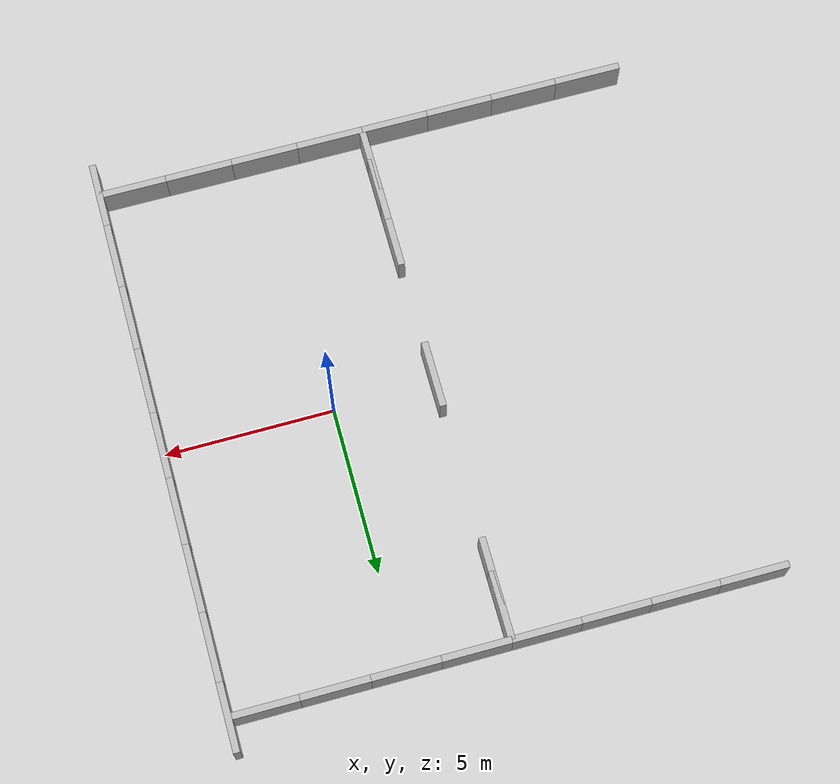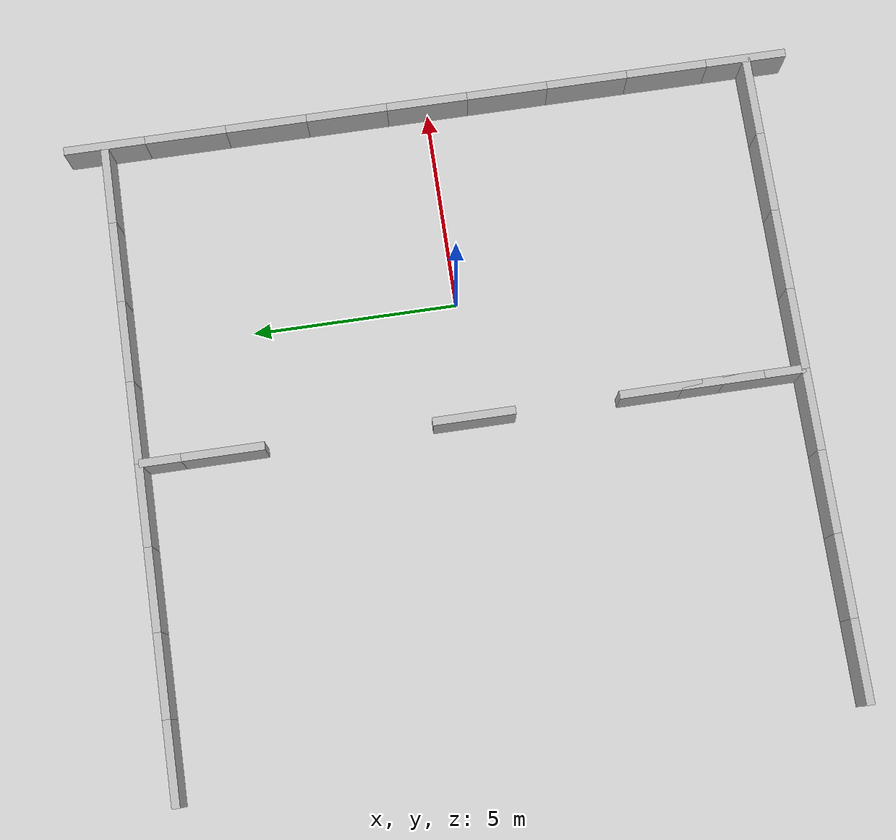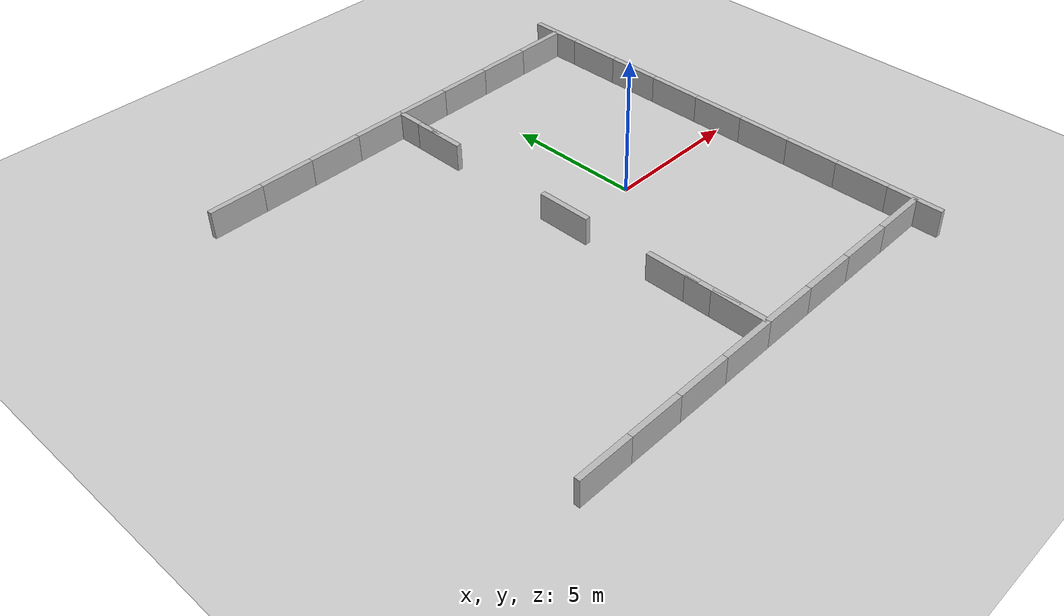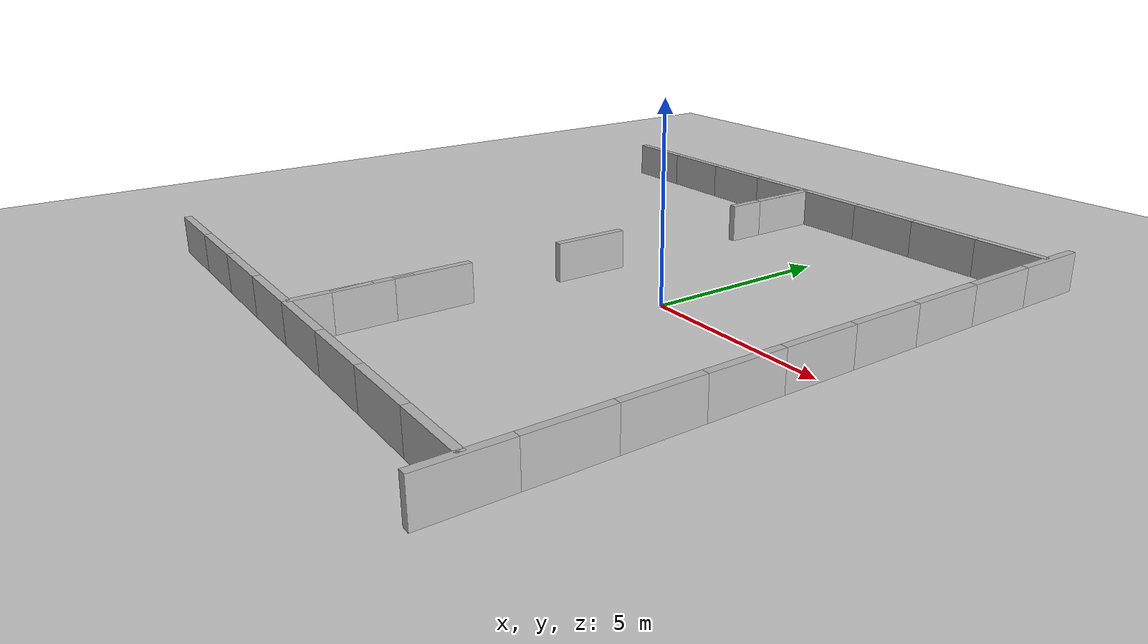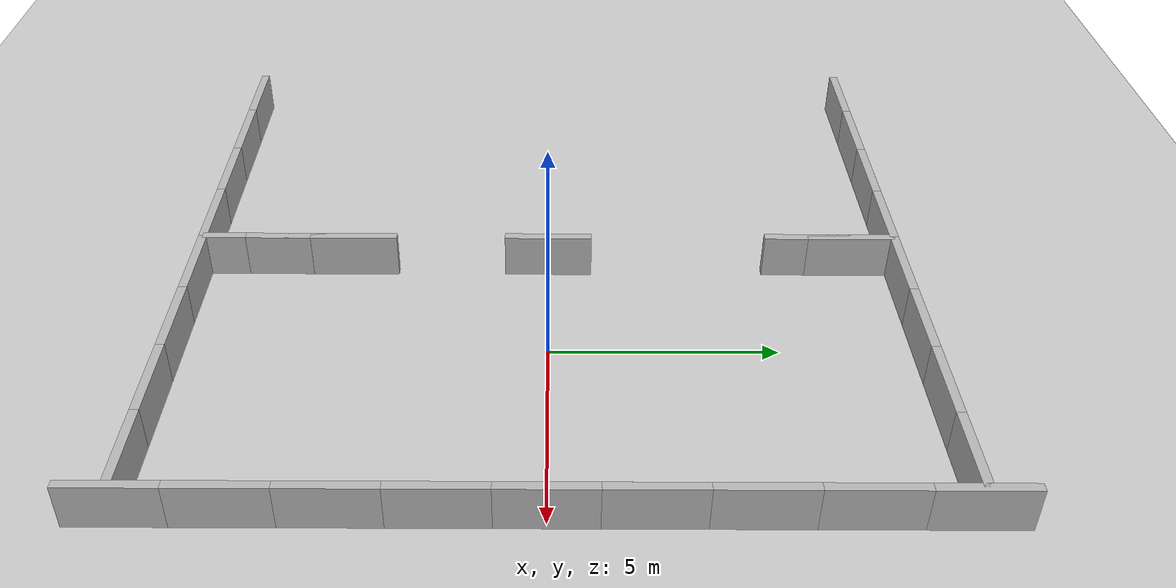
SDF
<sdf version="1.6">
 <world name="default">
  <model name="ground_plane">
   <static>1</static>
   <link name="link">
    <collision name="collision">
     <geometry><plane><normal>0 0 1</normal><size>100 100</size></plane></geometry>
     <surface>
      <contact><collide_bitmask>65535</collide_bitmask></contact>
      <friction><ode><mu>100</mu><mu2>50</mu2></ode></friction>
     </surface>
    </collision>
    <visual name="visual">
     <cast_shadows>0</cast_shadows>
     <geometry><plane><normal>0 0 1</normal><size>100 100</size></plane></geometry>
     <material>
      <script><uri>file://media/materials/scripts/gazebo.material</uri><name>Gazebo/Grey</name></script>
     </material>
    </visual>
   </link>
  </model>
  <model name="Color Tutorial Model">
   <static>1</static>
   <link name="grating">
    <collision name="body_collision"><geometry><box><size>2 0.2 2</size></box></geometry></collision>
    <visual name="body_visual">
     <geometry><box><size>2 0.2 2</size></box></geometry>
     <material>
      <script>
       <uri>/home/neuro/.gazebo/models/grating_wall/materials/scripts/</uri>
       <uri>/home/neuro/.gazebo/models/grating_wall/materials/scripts/</uri>
       <name>RepeatedTexture</name>
      </script>
     </material>
    </visual>
   </link>
   <pose>0 8 0 0 -0 0</pose>
  </model>
  <model name="Color Tutorial Model_clone">
   <static>1</static>
   <link name="grating">
    <collision name="body_collision"><geometry><box><size>2 0.2 2</size></box></geometry></collision>
    <visual name="body_visual">
     <geometry><box><size>2 0.2 2</size></box></geometry>
     <material>
      <script>
       <uri>/home/neuro/.gazebo/models/grating_wall/materials/scripts/</uri>
       <uri>/home/neuro/.gazebo/models/grating_wall/materials/scripts/</uri>
       <name>RepeatedTexture</name>
      </script>
     </material>
    </visual>
   </link>
   <pose>-2 8 0 0 -0 0</pose>
  </model>
  <model name="Color Tutorial Model_clone_0">
   <static>1</static>
   <link name="grating">
    <collision name="body_collision"><geometry><box><size>2 0.2 2</size></box></geometry></collision>
    <visual name="body_visual">
     <geometry><box><size>2 0.2 2</size></box></geometry>
     <material>
      <script>
       <uri>/home/neuro/.gazebo/models/grating_wall/materials/scripts/</uri>
       <uri>/home/neuro/.gazebo/models/grating_wall/materials/scripts/</uri>
       <name>RepeatedTexture</name>
      </script>
     </material>
    </visual>
   </link>
   <pose>2 8 0 0 -0 0</pose>
  </model>
  <model name="Color Tutorial Model_clone_1">
   <static>1</static>
   <link name="grating">
    <collision name="body_collision"><geometry><box><size>2 0.2 2</size></box></geometry></collision>
    <visual name="body_visual">
     <geometry><box><size>2 0.2 2</size></box></geometry>
     <material>
      <script>
       <uri>/home/neuro/.gazebo/models/grating_wall/materials/scripts/</uri>
       <uri>/home/neuro/.gazebo/models/grating_wall/materials/scripts/</uri>
       <name>RepeatedTexture</name>
      </script>
     </material>
    </visual>
   </link>
   <pose>0 -8 0 0 -0 0</pose>
  </model>
  <model name="Color Tutorial Model_clone_2">
   <static>1</static>
   <link name="grating">
    <collision name="body_collision"><geometry><box><size>2 0.2 2</size></box></geometry></collision>
    <visual name="body_visual">
     <geometry><box><size>2 0.2 2</size></box></geometry>
     <material>
      <script>
       <uri>/home/neuro/.gazebo/models/grating_wall/materials/scripts/</uri>
       <uri>/home/neuro/.gazebo/models/grating_wall/materials/scripts/</uri>
       <name>RepeatedTexture</name>
      </script>
     </material>
    </visual>
   </link>
   <pose>-2 -8 0 0 -0 0</pose>
  </model>
  <model name="Color Tutorial Model_clone_3">
   <static>1</static>
   <link name="grating">
    <collision name="body_collision"><geometry><box><size>2 0.2 2</size></box></geometry></collision>
    <visual name="body_visual">
     <geometry><box><size>2 0.2 2</size></box></geometry>
     <material>
      <script>
       <uri>/home/neuro/.gazebo/models/grating_wall/materials/scripts/</uri>
       <uri>/home/neuro/.gazebo/models/grating_wall/materials/scripts/</uri>
       <name>RepeatedTexture</name>
      </script>
     </material>
    </visual>
   </link>
   <pose>2 -8 0 0 -0 0</pose>
  </model>
  <model name="Color Tutorial Model_clone_4_clone_clone">
   <static>1</static>
   <link name="grating">
    <collision name="body_collision"><geometry><box><size>2 0.2 2</size></box></geometry></collision>
    <visual name="body_visual">
     <geometry><box><size>2 0.2 2</size></box></geometry>
     <material>
      <script>
       <uri>/home/neuro/.gazebo/models/grating_wall/materials/scripts/</uri>
       <uri>/home/neuro/.gazebo/models/grating_wall/materials/scripts/</uri>
       <name>RepeatedTexture</name>
      </script>
     </material>
    </visual>
   </link>
   <pose>5 -2 0 0 -0 1.5708</pose>
  </model>
  <model name="Color Tutorial Model_clone_4_clone_clone_0">
   <static>1</static>
   <link name="grating">
    <collision name="body_collision"><geometry><box><size>2 0.2 2</size></box></geometry></collision>
    <visual name="body_visual">
     <geometry><box><size>2 0.2 2</size></box></geometry>
     <material>
      <script>
       <uri>/home/neuro/.gazebo/models/grating_wall/materials/scripts/</uri>
       <uri>/home/neuro/.gazebo/models/grating_wall/materials/scripts/</uri>
       <name>RepeatedTexture</name>
      </script>
     </material>
    </visual>
   </link>
   <pose>5 0 0 0 -0 1.5708</pose>
  </model>
  <model name="Color Tutorial Model_clone_4_clone_clone_1">
   <static>1</static>
   <link name="grating">
    <collision name="body_collision"><geometry><box><size>2 0.2 2</size></box></geometry></collision>
    <visual name="body_visual">
     <geometry><box><size>2 0.2 2</size></box></geometry>
     <material>
      <script>
       <uri>/home/neuro/.gazebo/models/grating_wall/materials/scripts/</uri>
       <uri>/home/neuro/.gazebo/models/grating_wall/materials/scripts/</uri>
       <name>RepeatedTexture</name>
      </script>
     </material>
    </visual>
   </link>
   <pose>5 2 0 0 -0 1.5708</pose>
  </model>
  <model name="Color Tutorial Model_clone_4_clone_clone_clone">
   <static>1</static>
   <link name="grating">
    <collision name="body_collision"><geometry><box><size>2 0.2 2</size></box></geometry></collision>
    <visual name="body_visual">
     <geometry><box><size>2 0.2 2</size></box></geometry>
     <material>
      <script>
       <uri>/home/neuro/.gazebo/models/grating_wall/materials/scripts/</uri>
       <uri>/home/neuro/.gazebo/models/grating_wall/materials/scripts/</uri>
       <name>RepeatedTexture</name>
      </script>
     </material>
    </visual>
   </link>
   <pose>5 -4 0 0 -0 1.5708</pose>
  </model>
  <model name="Color Tutorial Model_clone_4_clone_clone_clone_0">
   <static>1</static>
   <link name="grating">
    <collision name="body_collision"><geometry><box><size>2 0.2 2</size></box></geometry></collision>
    <visual name="body_visual">
     <geometry><box><size>2 0.2 2</size></box></geometry>
     <material>
      <script>
       <uri>/home/neuro/.gazebo/models/grating_wall/materials/scripts/</uri>
       <uri>/home/neuro/.gazebo/models/grating_wall/materials/scripts/</uri>
       <name>RepeatedTexture</name>
      </script>
     </material>
    </visual>
   </link>
   <pose>5 4 0 0 -0 1.5708</pose>
  </model>
  <model name="Color Tutorial Model_clone_4_clone_clone_clone_clone">
   <static>1</static>
   <link name="grating">
    <collision name="body_collision"><geometry><box><size>2 0.2 2</size></box></geometry></collision>
    <visual name="body_visual">
     <geometry><box><size>2 0.2 2</size></box></geometry>
     <material>
      <script>
       <uri>/home/neuro/.gazebo/models/grating_wall/materials/scripts/</uri>
       <uri>/home/neuro/.gazebo/models/grating_wall/materials/scripts/</uri>
       <name>RepeatedTexture</name>
      </script>
     </material>
    </visual>
   </link>
   <pose>-3 0 0 0 -0 1.5708</pose>
  </model>
  <model name="Color Tutorial Model_clone_clone">
   <static>1</static>
   <link name="grating">
    <collision name="body_collision"><geometry><box><size>2 0.2 2</size></box></geometry></collision>
    <visual name="body_visual">
     <geometry><box><size>2 0.2 2</size></box></geometry>
     <material>
      <script>
       <uri>/home/neuro/.gazebo/models/grating_wall/materials/scripts/</uri>
       <uri>/home/neuro/.gazebo/models/grating_wall/materials/scripts/</uri>
       <name>RepeatedTexture</name>
      </script>
     </material>
    </visual>
   </link>
   <pose>-4 8 0 0 -0 0</pose>
  </model>
  <model name="Color Tutorial Model_clone_clone_0">
   <static>1</static>
   <link name="grating">
    <collision name="body_collision"><geometry><box><size>2 0.2 2</size></box></geometry></collision>
    <visual name="body_visual">
     <geometry><box><size>2 0.2 2</size></box></geometry>
     <material>
      <script>
       <uri>/home/neuro/.gazebo/models/grating_wall/materials/scripts/</uri>
       <uri>/home/neuro/.gazebo/models/grating_wall/materials/scripts/</uri>
       <name>RepeatedTexture</name>
      </script>
     </material>
    </visual>
   </link>
   <pose>-6 8 0 0 -0 0</pose>
  </model>
  <model name="Color Tutorial Model_clone_clone_1">
   <static>1</static>
   <link name="grating">
    <collision name="body_collision"><geometry><box><size>2 0.2 2</size></box></geometry></collision>
    <visual name="body_visual">
     <geometry><box><size>2 0.2 2</size></box></geometry>
     <material>
      <script>
       <uri>/home/neuro/.gazebo/models/grating_wall/materials/scripts/</uri>
       <uri>/home/neuro/.gazebo/models/grating_wall/materials/scripts/</uri>
       <name>RepeatedTexture</name>
      </script>
     </material>
    </visual>
   </link>
   <pose>-8 8 0 0 -0 0</pose>
  </model>
  <model name="Color Tutorial Model_clone_clone_2">
   <static>1</static>
   <link name="grating">
    <collision name="body_collision"><geometry><box><size>2 0.2 2</size></box></geometry></collision>
    <visual name="body_visual">
     <geometry><box><size>2 0.2 2</size></box></geometry>
     <material>
      <script>
       <uri>/home/neuro/.gazebo/models/grating_wall/materials/scripts/</uri>
       <uri>/home/neuro/.gazebo/models/grating_wall/materials/scripts/</uri>
       <name>RepeatedTexture</name>
      </script>
     </material>
    </visual>
   </link>
   <pose>-4 -8 0 0 -0 0</pose>
  </model>
  <model name="Color Tutorial Model_clone_clone_3">
   <static>1</static>
   <link name="grating">
    <collision name="body_collision"><geometry><box><size>2 0.2 2</size></box></geometry></collision>
    <visual name="body_visual">
     <geometry><box><size>2 0.2 2</size></box></geometry>
     <material>
      <script>
       <uri>/home/neuro/.gazebo/models/grating_wall/materials/scripts/</uri>
       <uri>/home/neuro/.gazebo/models/grating_wall/materials/scripts/</uri>
       <name>RepeatedTexture</name>
      </script>
     </material>
    </visual>
   </link>
   <pose>-6 -8 0 0 -0 0</pose>
  </model>
  <model name="Color Tutorial Model_clone_clone_4">
   <static>1</static>
   <link name="grating">
    <collision name="body_collision"><geometry><box><size>2 0.2 2</size></box></geometry></collision>
    <visual name="body_visual">
     <geometry><box><size>2 0.2 2</size></box></geometry>
     <material>
      <script>
       <uri>/home/neuro/.gazebo/models/grating_wall/materials/scripts/</uri>
       <uri>/home/neuro/.gazebo/models/grating_wall/materials/scripts/</uri>
       <name>RepeatedTexture</name>
      </script>
     </material>
    </visual>
   </link>
   <pose>-8 -8 0 0 -0 0</pose>
  </model>
  <model name="Color Tutorial Model_clone_4_clone_clone_clone_0_clone_4">
   <static>1</static>
   <link name="grating">
    <collision name="body_collision"><geometry><box><size>2 0.2 2</size></box></geometry></collision>
    <visual name="body_visual">
     <geometry><box><size>2 0.2 2</size></box></geometry>
     <material>
      <script>
       <uri>/home/neuro/.gazebo/models/grating_wall/materials/scripts/</uri>
       <uri>/home/neuro/.gazebo/models/grating_wall/materials/scripts/</uri>
       <name>RepeatedTexture</name>
      </script>
     </material>
    </visual>
   </link>
   <pose>5 6 0 0 -0 1.5708</pose>
  </model>
  <model name="Color Tutorial Model_clone_4_clone_clone_clone_0_clone_5">
   <static>1</static>
   <link name="grating">
    <collision name="body_collision"><geometry><box><size>2 0.2 2</size></box></geometry></collision>
    <visual name="body_visual">
     <geometry><box><size>2 0.2 2</size></box></geometry>
     <material>
      <script>
       <uri>/home/neuro/.gazebo/models/grating_wall/materials/scripts/</uri>
       <uri>/home/neuro/.gazebo/models/grating_wall/materials/scripts/</uri>
       <name>RepeatedTexture</name>
      </script>
     </material>
    </visual>
   </link>
   <pose>5 8 0 0 -0 1.5708</pose>
  </model>
  <model name="Color Tutorial Model_clone_4_clone_clone_clone_clone_clone_0_clone_0">
   <static>1</static>
   <link name="grating">
    <collision name="body_collision"><geometry><box><size>2 0.2 2</size></box></geometry></collision>
    <visual name="body_visual">
     <geometry><box><size>2 0.2 2</size></box></geometry>
     <material>
      <script>
       <uri>/home/neuro/.gazebo/models/grating_wall/materials/scripts/</uri>
       <uri>/home/neuro/.gazebo/models/grating_wall/materials/scripts/</uri>
       <name>RepeatedTexture</name>
      </script>
     </material>
    </visual>
   </link>
   <pose>-3 7 0 0 -0 1.5708</pose>
  </model>
  <model name="Color Tutorial Model_clone_4_clone_clone_clone_clone_0">
   <static>1</static>
   <link name="grating">
    <collision name="body_collision"><geometry><box><size>2 0.2 2</size></box></geometry></collision>
    <visual name="body_visual">
     <geometry><box><size>2 0.2 2</size></box></geometry>
     <material>
      <script>
       <uri>/home/neuro/.gazebo/models/grating_wall/materials/scripts/</uri>
       <uri>/home/neuro/.gazebo/models/grating_wall/materials/scripts/</uri>
       <name>RepeatedTexture</name>
      </script>
     </material>
    </visual>
   </link>
   <pose>5 -6 0 0 -0 1.5708</pose>
  </model>
  <model name="Color Tutorial Model_clone_4_clone_clone_clone_clone_1">
   <static>1</static>
   <link name="grating">
    <collision name="body_collision"><geometry><box><size>2 0.2 2</size></box></geometry></collision>
    <visual name="body_visual">
     <geometry><box><size>2 0.2 2</size></box></geometry>
     <material>
      <script>
       <uri>/home/neuro/.gazebo/models/grating_wall/materials/scripts/</uri>
       <uri>/home/neuro/.gazebo/models/grating_wall/materials/scripts/</uri>
       <name>RepeatedTexture</name>
      </script>
     </material>
    </visual>
   </link>
   <pose>5 -8 0 0 -0 1.5708</pose>
  </model>
  <model name="Color Tutorial Model_clone_4_clone_clone_clone_clone_2">
   <static>1</static>
   <link name="grating">
    <collision name="body_collision"><geometry><box><size>2 0.2 2</size></box></geometry></collision>
    <visual name="body_visual">
     <geometry><box><size>2 0.2 2</size></box></geometry>
     <material>
      <script>
       <uri>/home/neuro/.gazebo/models/grating_wall/materials/scripts/</uri>
       <uri>/home/neuro/.gazebo/models/grating_wall/materials/scripts/</uri>
       <name>RepeatedTexture</name>
      </script>
     </material>
    </visual>
   </link>
   <pose>-3 -7 0 0 -0 1.5708</pose>
  </model>
  <model name="Color Tutorial Model_clone_4_clone_clone_clone_clone_clone_0_clone_0_clone">
   <static>1</static>
   <link name="grating">
    <collision name="body_collision"><geometry><box><size>2 0.2 2</size></box></geometry></collision>
    <visual name="body_visual">
     <geometry><box><size>2 0.2 2</size></box></geometry>
     <material>
      <script>
       <uri>/home/neuro/.gazebo/models/grating_wall/materials/scripts/</uri>
       <uri>/home/neuro/.gazebo/models/grating_wall/materials/scripts/</uri>
       <name>RepeatedTexture</name>
      </script>
     </material>
    </visual>
   </link>
   <pose>-3 6 0 0 -0 1.5708</pose>
  </model>
  <model name="Color Tutorial Model_clone_4_clone_clone_clone_clone_2_clone">
   <static>1</static>
   <link name="grating">
    <collision name="body_collision"><geometry><box><size>2 0.2 2</size></box></geometry></collision>
    <visual name="body_visual">
     <geometry><box><size>2 0.2 2</size></box></geometry>
     <material>
      <script>
       <uri>/home/neuro/.gazebo/models/grating_wall/materials/scripts/</uri>
       <uri>/home/neuro/.gazebo/models/grating_wall/materials/scripts/</uri>
       <name>RepeatedTexture</name>
      </script>
     </material>
    </visual>
   </link>
   <pose>-3 -6 0 0 -0 1.5708</pose>
  </model>
  <model name="Color Tutorial Model_clone_3_clone">
   <static>1</static>
   <link name="grating">
    <collision name="body_collision"><geometry><box><size>2 0.2 2</size></box></geometry></collision>
    <visual name="body_visual">
     <geometry><box><size>2 0.2 2</size></box></geometry>
     <material>
      <script>
       <uri>/home/neuro/.gazebo/models/grating_wall/materials/scripts/</uri>
       <uri>/home/neuro/.gazebo/models/grating_wall/materials/scripts/</uri>
       <name>RepeatedTexture</name>
      </script>
     </material>
    </visual>
   </link>
   <pose>4 -8 0 0 -0 0</pose>
  </model>
  <model name="Color Tutorial Model_clone_3_clone_0">
   <static>1</static>
   <link name="grating">
    <collision name="body_collision"><geometry><box><size>2 0.2 2</size></box></geometry></collision>
    <visual name="body_visual">
     <geometry><box><size>2 0.2 2</size></box></geometry>
     <material>
      <script>
       <uri>/home/neuro/.gazebo/models/grating_wall/materials/scripts/</uri>
       <uri>/home/neuro/.gazebo/models/grating_wall/materials/scripts/</uri>
       <name>RepeatedTexture</name>
      </script>
     </material>
    </visual>
   </link>
   <pose>4 8 0 0 -0 0</pose>
  </model>
  <model name="Color Tutorial Model_clone_clone_1_clone">
   <static>1</static>
   <link name="grating">
    <collision name="body_collision"><geometry><box><size>2 0.2 2</size></box></geometry></collision>
    <visual name="body_visual">
     <geometry><box><size>2 0.2 2</size></box></geometry>
     <material>
      <script>
       <uri>/home/neuro/.gazebo/models/grating_wall/materials/scripts/</uri>
       <uri>/home/neuro/.gazebo/models/grating_wall/materials/scripts/</uri>
       <name>RepeatedTexture</name>
      </script>
     </material>
    </visual>
   </link>
   <pose>-10 8 0 0 -0 0</pose>
  </model>
  <model name="Color Tutorial Model_clone_clone_4_clone">
   <static>1</static>
   <link name="grating">
    <collision name="body_collision"><geometry><box><size>2 0.2 2</size></box></geometry></collision>
    <visual name="body_visual">
     <geometry><box><size>2 0.2 2</size></box></geometry>
     <material>
      <script>
       <uri>/home/neuro/.gazebo/models/grating_wall/materials/scripts/</uri>
       <uri>/home/neuro/.gazebo/models/grating_wall/materials/scripts/</uri>
       <name>RepeatedTexture</name>
      </script>
     </material>
    </visual>
   </link>
   <pose>-10 -8 0 0 -0 0</pose>
  </model>
  <model name="Color Tutorial Model_clone_4_clone_clone_clone_clone_2_clone_clone">
   <static>1</static>
   <link name="grating">
    <collision name="body_collision"><geometry><box><size>2 0.2 2</size></box></geometry></collision>
    <visual name="body_visual">
     <geometry><box><size>2 0.2 2</size></box></geometry>
     <material>
      <script>
       <uri>/home/neuro/.gazebo/models/grating_wall/materials/scripts/</uri>
       <uri>/home/neuro/.gazebo/models/grating_wall/materials/scripts/</uri>
       <name>RepeatedTexture</name>
      </script>
     </material>
    </visual>
   </link>
   <pose>-3 -4.5 0 0 -0 1.5708</pose>
  </model>
 </world>
</sdf>
